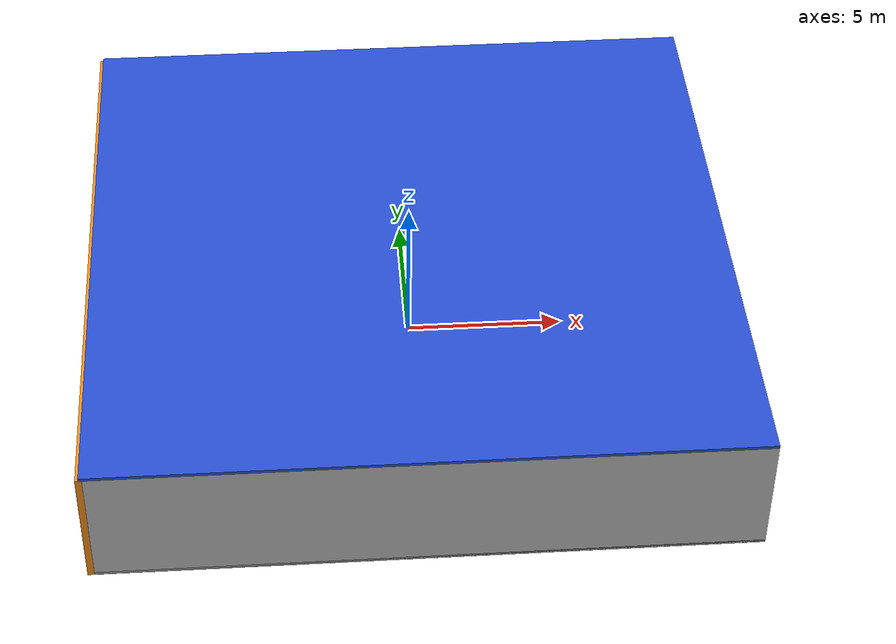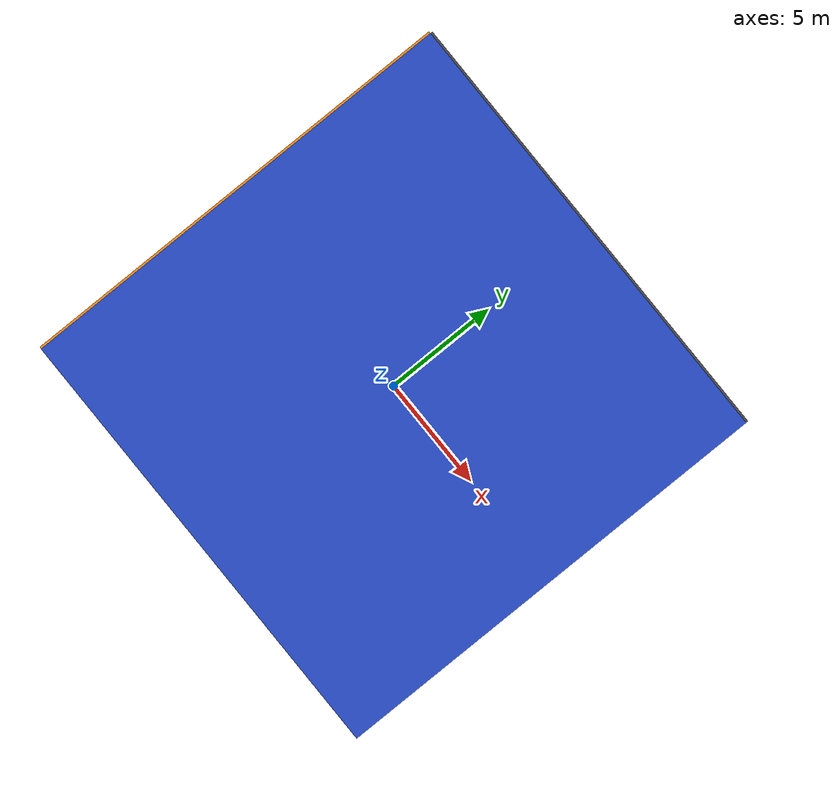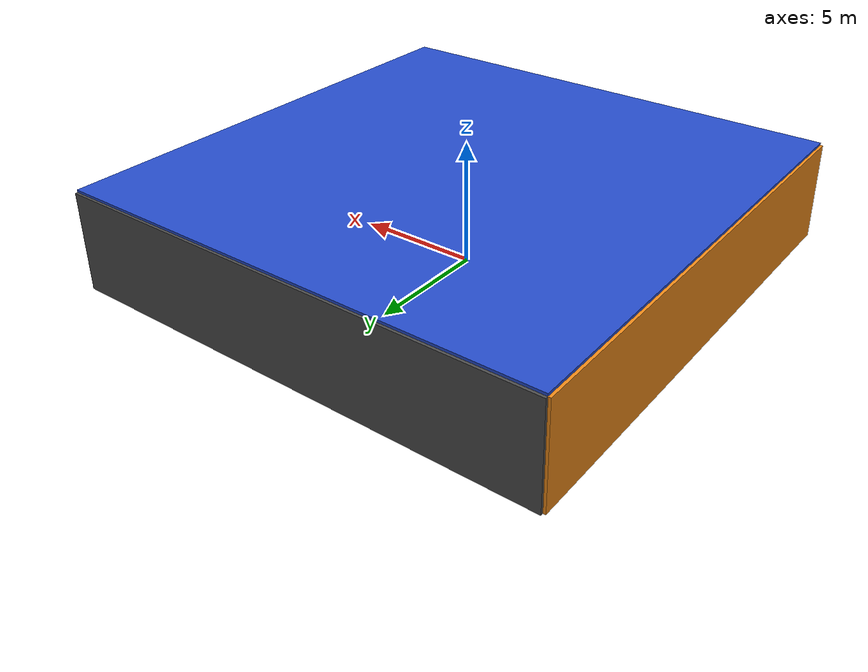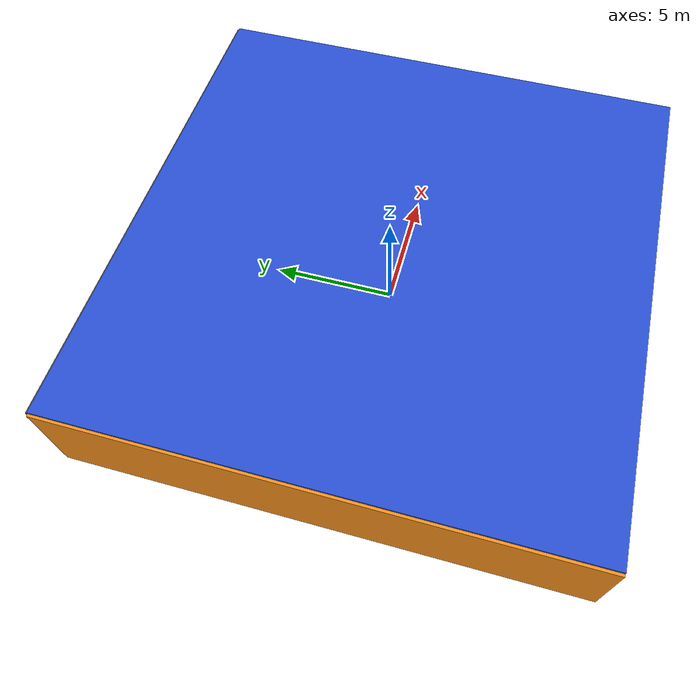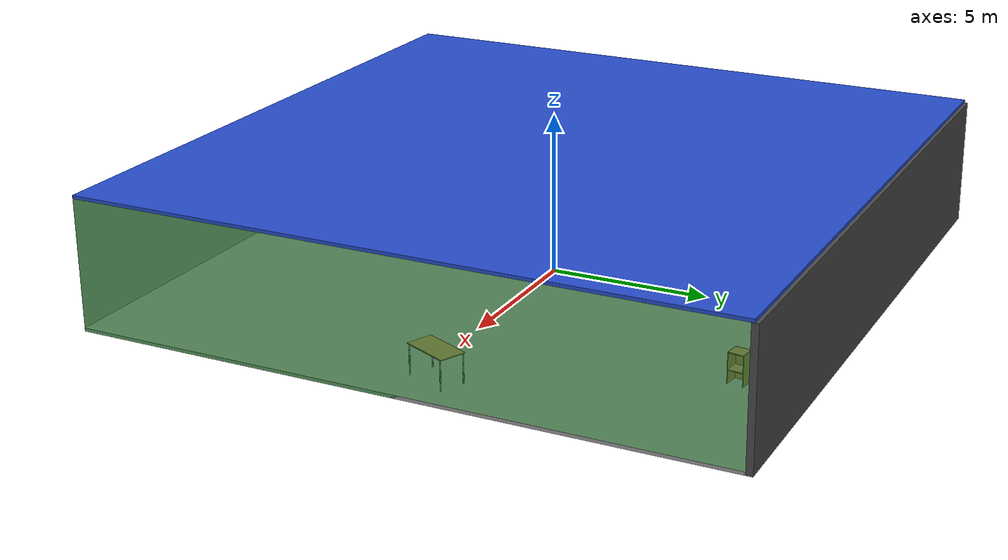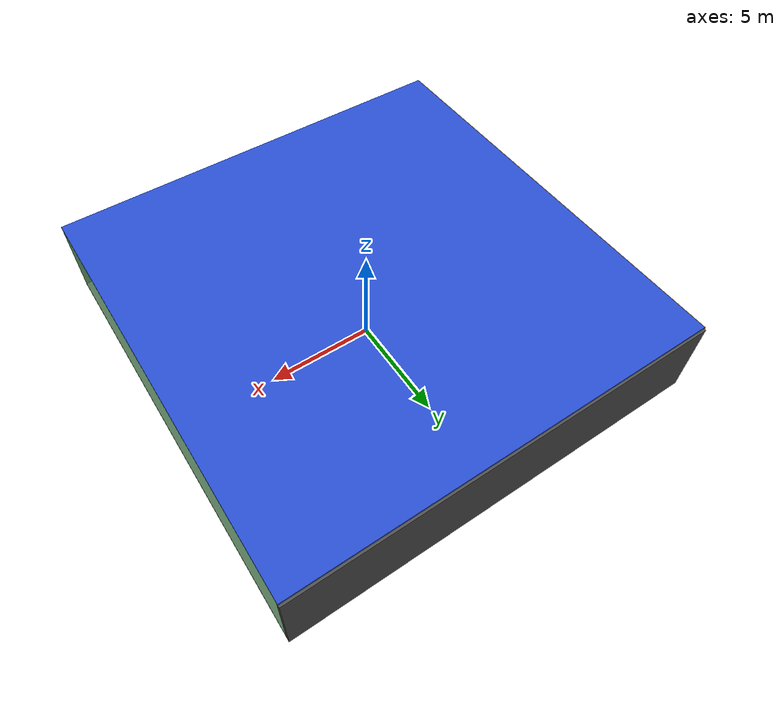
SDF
<sdf version="1.4">
 <world name="default">
  <physics type="ode">
   <max_step_size>0.001</max_step_size>
   <real_time_factor>1</real_time_factor>
   <real_time_update_rate>1000</real_time_update_rate>
   <gravity>0 0 -9.8</gravity>
  </physics>
  <scene><ambient>0.4 0.4 0.4 1</ambient><background>0.7 0.7 0.7 1</background><shadows>1</shadows></scene>
  <model name="Surrounding">
   <static>1</static>
   <link name="Ceiling">
    <collision name="Ceiling_Collision"><geometry><box><size>20 20 0.1</size></box></geometry></collision>
    <visual name="Ceiling_Visual">
     <geometry><box><size>20 20 0.1</size></box></geometry>
     <material>
      <script><uri>file://media/materials/scripts/gazebo.material</uri><name>Gazebo/Blue</name></script>
     </material>
    </visual>
    <pose>0 0 4.05 0 0 0</pose>
   </link>
   <link name="Wall_South">
    <collision name="Wall_South_Collision">
     <geometry><box><size>20 0 4</size></box></geometry>
     <pose>0 0 2 0 -0 0</pose>
    </collision>
    <visual name="Wall_South_Visual">
     <pose>0 0 2 0 -0 0</pose>
     <geometry><box><size>20 0 4</size></box></geometry>
     <material>
      <script><uri>file://media/materials/scripts/gazebo.material</uri><name>Gazebo/Pioneer2Body</name></script>
     </material>
    </visual>
    <velocity_decay><linear>0</linear><angular>0</angular></velocity_decay>
    <pose>0 -10 0 0 -0 0</pose>
   </link>
   <link name="Wall_East">
    <collision name="Wall_21_Collision">
     <geometry><box><size>20 0 4</size></box></geometry>
     <pose>0 0 2 0 -0 0</pose>
    </collision>
    <visual name="Wall_21_Visual">
     <pose>0 0 2 0 -0 0</pose>
     <geometry><box><size>20 0 4</size></box></geometry>
     <material>
      <script><uri>file://media/materials/scripts/gazebo.material</uri><name>Gazebo/GreenTransparent</name></script>
     </material>
    </visual>
    <velocity_decay><linear>0</linear><angular>0</angular></velocity_decay>
    <pose>10 0 0 0 -0 1.5708</pose>
   </link>
   <link name="Wall_North">
    <collision name="Wall_22_Collision">
     <geometry><box><size>20 0.2 4</size></box></geometry>
     <pose>0 0 2 0 -0 0</pose>
    </collision>
    <visual name="Wall_22_Visual">
     <pose>0 0 2 0 -0 0</pose>
     <geometry><box><size>20 0.2 4</size></box></geometry>
     <material>
      <script><uri>file://media/materials/scripts/gazebo.material</uri><name>Gazebo/DarkGrey</name></script>
     </material>
    </visual>
    <velocity_decay><linear>0</linear><angular>0</angular></velocity_decay>
    <pose>0 10 0 0 -0 0</pose>
   </link>
   <link name="Wall_West">
    <collision name="Wall_23_Collision">
     <geometry><box><size>20 0.2 4</size></box></geometry>
     <pose>0 0 2 0 -0 0</pose>
    </collision>
    <visual name="Wall_23_Visual">
     <pose>0 0 2 0 -0 0</pose>
     <geometry><box><size>20 0.2 4</size></box></geometry>
     <material>
      <script><uri>file://media/materials/scripts/gazebo.material</uri><name>Gazebo/Orange</name></script>
     </material>
    </visual>
    <velocity_decay><linear>0</linear><angular>0</angular></velocity_decay>
    <pose>-10 0 0 0 0 -1.5708</pose>
   </link>
   <link name="Ground_link">
    <collision name="collision">
     <pose>0 0 .05 0 -0 0</pose>
     <geometry><box><size>20 20 0.1</size></box></geometry>
    </collision>
    <visual name="visual">
     <pose>0 0 .05 0 -0 0</pose>
     <geometry><box><size>20 20 0.1</size></box></geometry>
     <material>
      <script><uri>file://media/materials/scripts/gazebo.material</uri><name>Gazebo/GreyGradientSky</name></script>
     </material>
    </visual>
   </link>
   <static>1</static>
  </model>
  <spherical_coordinates>
   <surface_model>EARTH_WGS84</surface_model>
   <latitude_deg>0</latitude_deg>
   <longitude_deg>0</longitude_deg>
   <elevation>0</elevation>
   <heading_deg>0</heading_deg>
  </spherical_coordinates>
  <light name="lightball_0" type="diffuse">
   <diffuse>0.8 0.8 0.8 1</diffuse>
   <specular>0.2 0.2 0.2 1</specular>
   <attenuation>
    <range>100</range>
    <constant>0.7</constant>
    <linear>0.01</linear>
    <quadratic>0.001</quadratic>
   </attenuation>
   <direction>-0.5 0.1 -0.9</direction>
   <pose>6.8395983587 -4.96682104742 3.57140027695 0 0 0</pose>
  </light>
  <light name="lightball_1" type="diffuse">
   <diffuse>0.8 0.8 0.8 1</diffuse>
   <specular>0.2 0.2 0.2 1</specular>
   <attenuation>
    <range>100</range>
    <constant>0.7</constant>
    <linear>0.01</linear>
    <quadratic>0.001</quadratic>
   </attenuation>
   <direction>-0.5 0.1 -0.9</direction>
   <pose>4.03037426057 -7.9309653758 1.46132653625 0 0 0</pose>
  </light>
  <light name="lightball_2" type="diffuse">
   <diffuse>0.8 0.8 0.8 1</diffuse>
   <specular>0.2 0.2 0.2 1</specular>
   <attenuation>
    <range>100</range>
    <constant>0.7</constant>
    <linear>0.01</linear>
    <quadratic>0.001</quadratic>
   </attenuation>
   <direction>-0.5 0.1 -0.9</direction>
   <pose>7.62909657438 6.22156009088 2.89621114994 0 0 0</pose>
  </light>
  <light name="lightball_3" type="diffuse">
   <diffuse>0.8 0.8 0.8 1</diffuse>
   <specular>0.2 0.2 0.2 1</specular>
   <attenuation>
    <range>100</range>
    <constant>0.7</constant>
    <linear>0.01</linear>
    <quadratic>0.001</quadratic>
   </attenuation>
   <direction>-0.5 0.1 -0.9</direction>
   <pose>5.2339407558 -1.83287883842 1.85967784268 0 0 0</pose>
  </light>
  <light name="lightball_4" type="diffuse">
   <diffuse>0.8 0.8 0.8 1</diffuse>
   <specular>0.2 0.2 0.2 1</specular>
   <attenuation>
    <range>100</range>
    <constant>0.7</constant>
    <linear>0.01</linear>
    <quadratic>0.001</quadratic>
   </attenuation>
   <direction>-0.5 0.1 -0.9</direction>
   <pose>9.56093509892 1.95298757999 1.06510907731 0 0 0</pose>
  </light>
  <light name="lightball_5" type="diffuse">
   <diffuse>0.8 0.8 0.8 1</diffuse>
   <specular>0.2 0.2 0.2 1</specular>
   <attenuation>
    <range>100</range>
    <constant>0.7</constant>
    <linear>0.01</linear>
    <quadratic>0.001</quadratic>
   </attenuation>
   <direction>-0.5 0.1 -0.9</direction>
   <pose>5.59863790007 8.57777813821 2.3936785966 0 0 0</pose>
  </light>
  <light name="lightball_6" type="diffuse">
   <diffuse>0.8 0.8 0.8 1</diffuse>
   <specular>0.2 0.2 0.2 1</specular>
   <attenuation>
    <range>100</range>
    <constant>0.7</constant>
    <linear>0.01</linear>
    <quadratic>0.001</quadratic>
   </attenuation>
   <direction>-0.5 0.1 -0.9</direction>
   <pose>7.05200509685 -8.39995159715 3.6751548788 0 0 0</pose>
  </light>
  <light name="lightball_7" type="diffuse">
   <diffuse>0.8 0.8 0.8 1</diffuse>
   <specular>0.2 0.2 0.2 1</specular>
   <attenuation>
    <range>100</range>
    <constant>0.7</constant>
    <linear>0.01</linear>
    <quadratic>0.001</quadratic>
   </attenuation>
   <direction>-0.5 0.1 -0.9</direction>
   <pose>3.47086273752 -5.85760927283 2.22460864021 0 0 0</pose>
  </light>
  <light name="lightball_8" type="diffuse">
   <diffuse>0.8 0.8 0.8 1</diffuse>
   <specular>0.2 0.2 0.2 1</specular>
   <attenuation>
    <range>100</range>
    <constant>0.7</constant>
    <linear>0.01</linear>
    <quadratic>0.001</quadratic>
   </attenuation>
   <direction>-0.5 0.1 -0.9</direction>
   <pose>2.67091999011 7.23056330514 1.96024495262 0 0 0</pose>
  </light>
  <light name="lightball_9" type="diffuse">
   <diffuse>0.8 0.8 0.8 1</diffuse>
   <specular>0.2 0.2 0.2 1</specular>
   <attenuation>
    <range>100</range>
    <constant>0.7</constant>
    <linear>0.01</linear>
    <quadratic>0.001</quadratic>
   </attenuation>
   <direction>-0.5 0.1 -0.9</direction>
   <pose>-5.11563353819 -8.8584949571 1.55878562492 0 0 0</pose>
  </light>
  <light name="lightball_10" type="diffuse">
   <diffuse>0.8 0.8 0.8 1</diffuse>
   <specular>0.2 0.2 0.2 1</specular>
   <attenuation>
    <range>100</range>
    <constant>0.7</constant>
    <linear>0.01</linear>
    <quadratic>0.001</quadratic>
   </attenuation>
   <direction>-0.5 0.1 -0.9</direction>
   <pose>0.0500204489586 -8.65925645214 2.27475163875 0 0 0</pose>
  </light>
  <light name="lightball_11" type="diffuse">
   <diffuse>0.8 0.8 0.8 1</diffuse>
   <specular>0.2 0.2 0.2 1</specular>
   <attenuation>
    <range>100</range>
    <constant>0.7</constant>
    <linear>0.01</linear>
    <quadratic>0.001</quadratic>
   </attenuation>
   <direction>-0.5 0.1 -0.9</direction>
   <pose>-9.74344555011 -8.64798066115 2.75410212781 0 0 0</pose>
  </light>
  <include>
   <uri>model://construction_cone</uri>
   <pose>-6.68040694541 5.02744044505 0 0 0 0.645738627756</pose>
  </include>
  <include><uri>model://cabinet</uri><pose>-4.80631905963 4.55509192306 0 0 0 3.0806136413</pose></include>
  <include><uri>model://cabinet</uri><pose>-1.45089839292 -4.12050373467 0 0 0 1.29006894319</pose></include>
  <include><uri>model://cabinet</uri><pose>5.36933951032 8.01367135217 0 0 0 3.01216622578</pose></include>
  <include><uri>model://table</uri><pose>8.62588430907 0.66659131456 0 0 0 1.15443325782</pose></include>
 </world>
</sdf>

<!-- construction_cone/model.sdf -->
<sdf version="1.5">
  <model name="Construction Cone">
    <link name="link">
      <collision name="collision">
        <geometry>
          <mesh>
            <scale>10 10 10</scale>
            <uri>file://isr-testbed/construction_cone/meshes/construction_cone.dae</uri>
          </mesh>
        </geometry>
      </collision>
      <visual name="visual">
        <geometry>
          <mesh>
            <scale>10 10 10</scale>
            <uri>file://isr-testbed/construction_cone/meshes/construction_cone.dae</uri>
          </mesh>
        </geometry>
      </visual>
    </link>
  </model>
</sdf>

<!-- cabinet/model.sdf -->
<sdf version="1.5">
  <model name="cabinet">
    <static>true</static>
    <link name="cabinet_bottom_plate">
      <inertial>
        <pose>0 0 -1 0 0 0</pose>
        <inertia>
          <ixx>2.050000</ixx>
          <ixy>0</ixy>
          <ixz>0</ixz>
          <iyy>2.050000</iyy>
          <iyz>0</iyz>
          <izz>2.050000</izz>
        </inertia>
        <mass>25.000000</mass>
      </inertial>
      <collision name="cabinet_bottom_plate_geom">
        <pose>0 0 0.010000 0 0 0</pose>
        <geometry>
          <box>
            <size>0.450000 0.450000 0.020000</size>
          </box>
        </geometry>
      </collision>
      <visual name="cabinet_bottom_plate_geom_visual">
        <pose>0 0 0.010000 0 0 0</pose>
        <geometry>
          <box>
            <size>0.450000 0.450000 0.020000</size>
          </box>
        </geometry>
        <material>
          <script>
            <uri>model://media/materials/scripts/gazebo.material</uri>
            <name>Gazebo/Wood</name>
          </script>
        </material>
      </visual>
      <collision name="cabinet_bottom_plate_geom_cabinet_back_plate">
        <pose>0.235000 0 0.510000 0 0 0</pose>
        <geometry>
          <box>
            <size>0.020000 0.450000 1.020000</size>
          </box>
        </geometry>
      </collision>
      <visual name="cabinet_bottom_plate_geom_cabinet_back_plate_visual">
        <pose>0.235000 0 0.510000 0 0 0</pose>
        <geometry>
          <box>
            <size>0.020000 0.450000 1.020000</size>
          </box>
        </geometry>
        <material>
          <script>
            <uri>model://media/materials/scripts/gazebo.material</uri>
            <name>Gazebo/Wood</name>
          </script>
        </material>
      </visual>
      <collision name="cabinet_bottom_plate_geom_cabinet_left_plate">
        <pose>0 0.235000 0.510000 0 0 0</pose>
        <geometry>
          <box>
            <size>0.450000 0.020000 1.020000</size>
          </box>
        </geometry>
      </collision>
      <visual name="cabinet_bottom_plate_geom_cabinet_left_plate_visual">
        <pose>0 0.235000 0.510000 0 0 0</pose>
        <geometry>
          <box>
            <size>0.450000 0.020000 1.020000</size>
          </box>
        </geometry>
        <material>
          <script>
            <uri>model://media/materials/scripts/gazebo.material</uri>
            <name>Gazebo/Wood</name>
          </script>
        </material>
      </visual>
      <collision name="cabinet_bottom_plate_geom_cabinet_middle_plate">
        <pose>0 0 0.510000 0 0 0</pose>
        <geometry>
          <box>
            <size>0.450000 0.450000 0.020000</size>
          </box>
        </geometry>
      </collision>
      <visual name="cabinet_bottom_plate_geom_cabinet_middle_plate_visual">
        <pose>0 0 0.510000 0 0 0</pose>
        <geometry>
          <box>
            <size>0.450000 0.450000 0.020000</size>
          </box>
        </geometry>
        <material>
          <script>
            <uri>model://media/materials/scripts/gazebo.material</uri>
            <name>Gazebo/Wood</name>
          </script>
        </material>
      </visual>
      <collision name="cabinet_bottom_plate_geom_cabinet_right_plate">
        <pose>0 -0.235000 0.510000 0 0 0</pose>
        <geometry>
          <box>
            <size>0.450000 0.020000 1.020000</size>
          </box>
        </geometry>
      </collision>
      <visual name="cabinet_bottom_plate_geom_cabinet_right_plate_visual">
        <pose>0 -0.235000 0.510000 0 0 0</pose>
        <geometry>
          <box>
            <size>0.450000 0.020000 1.020000</size>
          </box>
        </geometry>
        <material>
          <script>
            <uri>model://media/materials/scripts/gazebo.material</uri>
            <name>Gazebo/Wood</name>
          </script>
        </material>
      </visual>
      <collision name="cabinet_bottom_plate_geom_cabinet_top_plate">
        <pose>0 0 1.010000 0 0 0</pose>
        <geometry>
          <box>
            <size>0.450000 0.450000 0.020000</size>
          </box>
        </geometry>
      </collision>
      <visual name="cabinet_bottom_plate_geom_cabinet_top_plate_visual">
        <pose>0 0 1.010000 0 0 0</pose>
        <geometry>
          <box>
            <size>0.450000 0.450000 0.020000</size>
          </box>
        </geometry>
        <material>
          <script>
            <uri>model://media/materials/scripts/gazebo.material</uri>
            <name>Gazebo/Wood</name>
          </script>
        </material>
      </visual>
    </link>
  </model>
</sdf>

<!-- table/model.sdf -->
<sdf version="1.5">
  <model name="table">
    <static>true</static>
    <link name="link">
      <collision name="surface">
        <pose>0 0 1.0 0 0 0</pose>
        <geometry>
          <box>
            <size>1.5 0.8 0.03</size>
          </box>
        </geometry>
        <surface>
          <friction>
            <ode>
              <mu>0.6</mu>
              <mu2>0.6</mu2>
            </ode>
          </friction>
        </surface>
      </collision>
      <visual name="visual1">
        <pose>0 0 1.0 0 0 0</pose>
        <geometry>
          <box>
            <size>1.5 0.8 0.03</size>
          </box>
        </geometry>
        <material>
          <script>
            <uri>model://media/materials/scripts/gazebo.material</uri>
            <name>Gazebo/Wood</name>
          </script>
        </material>
      </visual>
      <collision name="front_left_leg">
        <pose>0.68 0.38 0.5 0 0 0</pose>
        <geometry>
          <cylinder>
            <radius>0.02</radius>
            <length>1.0</length>
          </cylinder>
        </geometry>
      </collision>
      <visual name="front_left_leg">
        <pose>0.68 0.38 0.5 0 0 0</pose>
        <geometry>
          <cylinder>
            <radius>0.02</radius>
            <length>1.0</length>
          </cylinder>
        </geometry>
        <material>
          <script>
            <uri>model://media/materials/scripts/gazebo.material</uri>
            <name>Gazebo/Grey</name>
          </script>
        </material>
      </visual>
      <collision name="front_right_leg">
        <pose>0.68 -0.38 0.5 0 0 0</pose>
        <geometry>
          <cylinder>
            <radius>0.02</radius>
            <length>1.0</length>
          </cylinder>
        </geometry>
      </collision>
      <visual name="front_right_leg">
        <pose>0.68 -0.38 0.5 0 0 0</pose>
        <geometry>
          <cylinder>
            <radius>0.02</radius>
            <length>1.0</length>
          </cylinder>
        </geometry>
        <material>
          <script>
            <uri>model://media/materials/scripts/gazebo.material</uri>
            <name>Gazebo/Grey</name>
          </script>
        </material>
      </visual>
      <collision name="back_right_leg">
        <pose>-0.68 -0.38 0.5 0 0 0</pose>
        <geometry>
          <cylinder>
            <radius>0.02</radius>
            <length>1.0</length>
          </cylinder>
        </geometry>
      </collision>
      <visual name="back_right_leg">
        <pose>-0.68 -0.38 0.5 0 0 0</pose>
        <geometry>
          <cylinder>
            <radius>0.02</radius>
            <length>1.0</length>
          </cylinder>
        </geometry>
        <material>
          <script>
            <uri>model://media/materials/scripts/gazebo.material</uri>
            <name>Gazebo/Grey</name>
          </script>
        </material>
      </visual>
      <collision name="back_left_leg">
        <pose>-0.68 0.38 0.5 0 0 0</pose>
        <geometry>
          <cylinder>
            <radius>0.02</radius>
            <length>1.0</length>
          </cylinder>
        </geometry>
      </collision>
      <visual name="back_left_leg">
        <pose>-0.68 0.38 0.5 0 0 0</pose>
        <geometry>
          <cylinder>
            <radius>0.02</radius>
            <length>1.0</length>
          </cylinder>
        </geometry>
        <material>
          <script>
            <uri>model://media/materials/scripts/gazebo.material</uri>
            <name>Gazebo/Grey</name>
          </script>
        </material>
      </visual>
    </link>
  </model>
</sdf>
